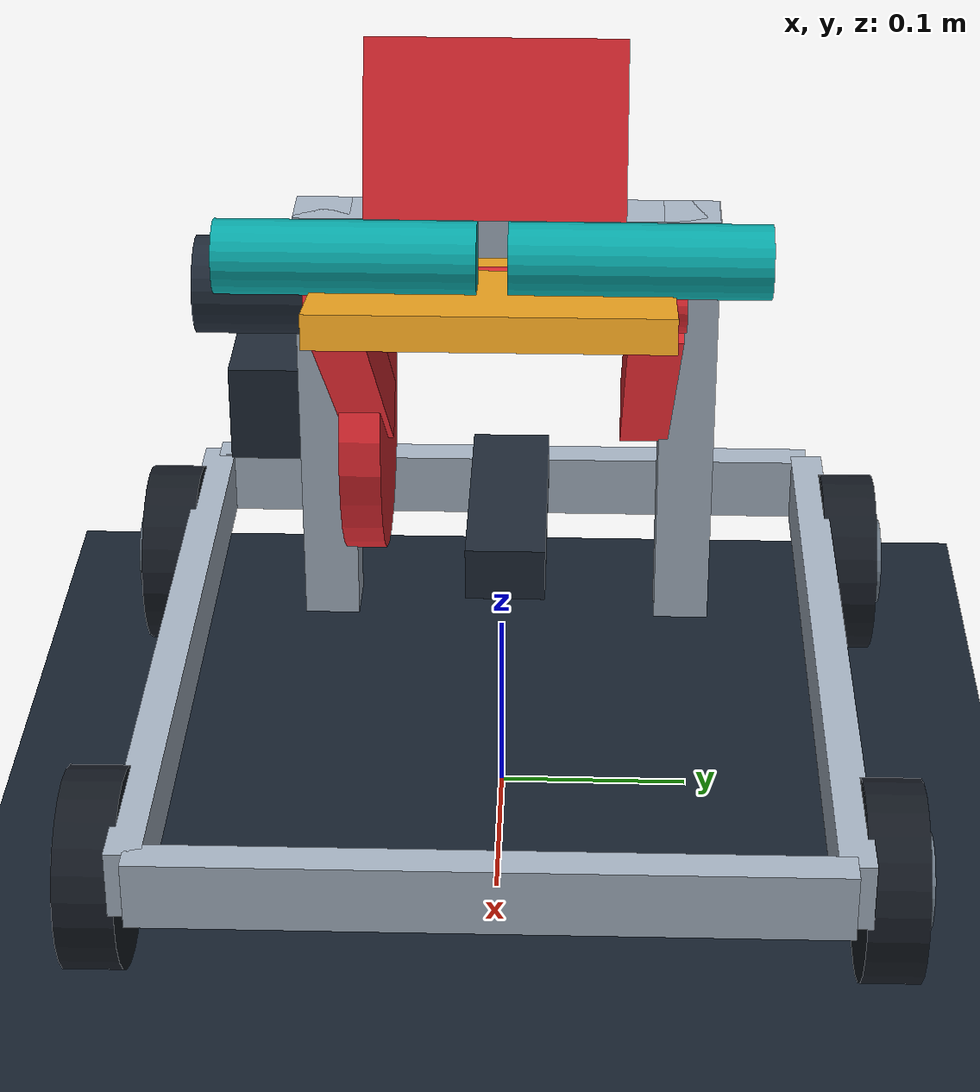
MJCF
<mujoco model="Sector-Arm Rim Nest"><compiler angle="degree" /><visual><global offwidth="800" offheight="600" /><quality offsamples="0" /><headlight ambient=".45 .45 .45" /></visual><worldbody><light pos="0 -1 3" castshadow="false" /><geom type="plane" size="2 2 .1" rgba=".09 .13 .18 1" /><geom type="box" pos="0 -0.175 0.0758" size="0.21 0.009 0.018" euler="0 0 0" rgba=".65 .7 .76 1" contype="0" conaffinity="0" /><geom type="box" pos="0 0.175 0.0758" size="0.21 0.009 0.018" euler="0 0 0" rgba=".65 .7 .76 1" contype="0" conaffinity="0" /><geom type="box" pos="-0.21 0 0.0758" size="0.009 0.175 0.018" euler="0 0 0" rgba=".65 .7 .76 1" contype="0" conaffinity="0" /><geom type="box" pos="0.21 0 0.0758" size="0.009 0.175 0.018" euler="0 0 0" rgba=".65 .7 .76 1" contype="0" conaffinity="0" /><geom type="cylinder" pos="-0.16 -0.19599999999999998 0.0508" size="0.0508 0.015" euler="90 0 0" rgba=".08 .1 .13 1" contype="0" conaffinity="0" /><geom type="cylinder" pos="-0.16 -0.213 0.0508" size="0.024384 0.003" euler="90 0 0" rgba=".4 .45 .5 1" contype="0" conaffinity="0" /><geom type="cylinder" pos="0.16 -0.19599999999999998 0.0508" size="0.0508 0.015" euler="90 0 0" rgba=".08 .1 .13 1" contype="0" conaffinity="0" /><geom type="cylinder" pos="0.16 -0.213 0.0508" size="0.024384 0.003" euler="90 0 0" rgba=".4 .45 .5 1" contype="0" conaffinity="0" /><geom type="cylinder" pos="-0.16 0.19599999999999998 0.0508" size="0.0508 0.015" euler="90 0 0" rgba=".08 .1 .13 1" contype="0" conaffinity="0" /><geom type="cylinder" pos="-0.16 0.213 0.0508" size="0.024384 0.003" euler="90 0 0" rgba=".4 .45 .5 1" contype="0" conaffinity="0" /><geom type="cylinder" pos="0.16 0.19599999999999998 0.0508" size="0.0508 0.015" euler="90 0 0" rgba=".08 .1 .13 1" contype="0" conaffinity="0" /><geom type="cylinder" pos="0.16 0.213 0.0508" size="0.024384 0.003" euler="90 0 0" rgba=".4 .45 .5 1" contype="0" conaffinity="0" /><geom type="box" pos="-0.12 0.0 0.1008" size="0.07 0.022 0.015" euler="0 0 0" rgba=".12 .16 .21 1" contype="0" conaffinity="0" /><geom type="box" pos="-0.092 0.098 0.18" size="0.015 0.015 0.12" euler="0.0 0.0 0.0" rgba=".65 .7 .76 1" contype="0" conaffinity="0" /><geom type="box" pos="-0.092 -0.098 0.18" size="0.015 0.015 0.12" euler="0.0 0.0 0.0" rgba=".65 .7 .76 1" contype="0" conaffinity="0" /><geom type="box" pos="-0.092 0.0 0.286" size="0.015 0.1125 0.014" euler="0.0 0.0 0.0" rgba=".65 .7 .76 1" contype="0" conaffinity="0" /><geom type="box" pos="0.004 0.075 0.256" size="0.1225 0.013 0.016" euler="0.0 -38.0 0.0" rgba=".87 .16 .19 1" contype="0" conaffinity="0" /><geom type="box" pos="0.004 -0.075 0.256" size="0.1225 0.013 0.016" euler="0.0 -38.0 0.0" rgba=".87 .16 .19 1" contype="0" conaffinity="0" /><geom type="cylinder" pos="-0.092 -0.076 0.177" size="0.0725 0.011" euler="90.0 0.0 0.0" rgba=".87 .16 .19 1" contype="0" conaffinity="0" /><geom type="cylinder" pos="0.101 0.0 0.336" size="0.015 0.089" euler="90.0 0.0 0.0" rgba=".87 .16 .19 1" contype="0" conaffinity="0" /><geom type="box" pos="0.137 0.0 0.35" size="0.0625 0.082 0.008" euler="0.0 -12.0 0.0" rgba=".96 .66 .13 1" contype="0" conaffinity="0" /><geom type="cylinder" pos="0.142 0.066 0.374" size="0.017 0.059" euler="90.0 0.0 0.0" rgba=".03 .65 .65 1" contype="0" conaffinity="0" /><geom type="cylinder" pos="0.142 -0.066 0.374" size="0.017 0.059" euler="90.0 0.0 0.0" rgba=".03 .65 .65 1" contype="0" conaffinity="0" /><geom type="box" pos="0.091 0.0 0.416" size="0.011 0.06 0.041" euler="0.0 -20.0 0.0" rgba=".87 .16 .19 1" contype="0" conaffinity="0" /><geom type="box" pos="-0.125 -0.126 0.176" size="0.032 0.027 0.027" euler="0.0 0.0 0.0" rgba=".12 .16 .21 1" contype="0" conaffinity="0" /><geom type="cylinder" pos="0.088 -0.112 0.336" size="0.023 0.029" euler="90.0 0.0 0.0" rgba=".12 .16 .21 1" contype="0" conaffinity="0" /></worldbody></mujoco>
